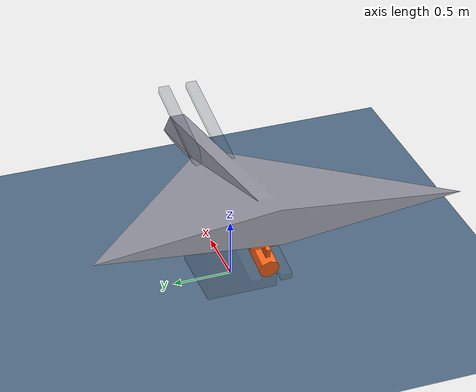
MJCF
<mujoco model="uav_rail_scene">

  <!-- ==============================================
       Compiler & Options
       ============================================== -->
  <compiler angle="degree" eulerseq="xyz"
             meshdir="/home/heinz/isaaclab_uav/assets"/>

  <option timestep="0.005" gravity="0 0 -9.81"
          impratio="20" tolerance="1e-8" ls_tolerance="1e-8"
          noslip_tolerance="1e-8">
    <flag contact="enable"/>
  </option>

  <!-- Soft contacts — damped collisions between rigid bodies.
       Cart stays non-collidable (contype=0 on its geoms) since the
       prismatic joint already handles its motion along the rail.    -->
  <contact>
    <pair name="uav_ground" geom1="ground" geom2="uav_body"
          solref="0.01 0.9" solimp="0.95 0.99 0.001 0.5 2"
          condim="3" friction="0.5 0.3 0.1"/>
    <pair name="uav_cart" geom1="cart_geom" geom2="uav_body"
          solref="0.01 0.9" solimp="0.95 0.99 0.001 0.5 2"
          condim="3" friction="0 0 0"/>
  </contact>

  <visual>
    <map stiffness="1000" fogstart="10" fogend="80"/>
    <quality shadowsize="2048"/>
    <headlight diffuse="0.6 0.6 0.6" ambient="0.3 0.3 0.3"/>
  </visual>

  <!-- ==============================================
       Assets: Meshes
       ============================================== -->
  <asset>
    <!-- UAV collision/visual mesh -->
    <mesh name="uav_mesh"
          file="shahed-136/source/shahed_collision_2.stl"/>
    <!-- Rail structure mesh -->
    <mesh name="rail_mesh"
          file="shahed-136/source/rail_collision.stl"/>
    <!-- Launch cart mesh -->
    <mesh name="cart_mesh"
          file="shahed-136/source/launch_cart.stl"/>
  </asset>

  <!-- ==============================================
       World Body
       ============================================== -->
  <worldbody>

    <!-- Ground plane (infinite flat plane at z=0) -->
    <geom name="ground" type="plane" size="50 50 0.1" pos="0 0 0"
          rgba="0.3 0.4 0.5 1"/>

    <!-- Lighting -->
    <light directional="true" diffuse="0.8 0.8 0.8" specular="0.2 0.2 0.2"
           pos="5 5 10" dir="-0.5 -0.5 -1"/>

    <body name="base_link" pos="0 0 0" quat="1 0 0 0">
      <geom name="base_geom" type="mesh" mesh="rail_mesh"
            rgba="0.25 0.30 0.35 0.25"
            density="0"
            contype="0" conaffinity="0"/>

      <!-- Tilted intermediate body — provides the inclined joint frame.
           euler="0 -78.5 0" → local +X ≈ (0.20, 0, 0.98) in world (upward) -->
      <body name="rail_link" pos="-0.65 0 0.71" euler="0 -11.5 0">

        <!-- Launch cart — slides along rail_link's local +X                 -->
        <body name="launch_cart" pos="0 0 0" euler="0 0 0">
          <joint name="rail_joint" type="slide" axis="1 0 0"
                 limited="true" range="0 2"
                 damping="5" stiffness="10"
                 armature="0.01"/>
          <inertial pos="0 0 0" mass="5" diaginertia="0.05 0.05 0.02"/>

          <!-- Cart — collides with UAV + rail. Joint constraint keeps it
               on track; soft contacts prevent jamming.                       -->
          <geom name="cart_geom" type="mesh" mesh="cart_mesh"
                rgba="1.0 0.4 0.1 1"
                density="0"/>

        </body>
      </body>
    </body>

    <body name="uav" pos="-0.2 0 1.00" euler="0 12.8 0">
      <!-- 6-DoF free joint -->
      <joint name="uav_joint" type="free"/>

      <!-- Inertial: mass=200 kg, inertia from URDF -->
      <inertial pos="0 0 0" mass="200" diaginertia="40 40 20"/>

      <!-- UAV — full collision with everything (default contype/affinity).  -->
      <geom name="uav_body" type="mesh" mesh="uav_mesh"
            rgba="0.6 0.6 0.65 1"
            density="0"/>

    </body>

  </worldbody>

  <!-- ==============================================
       Equality: launch cradle
       ============================================== -->
  <equality>
    <weld name="uav_cradle" body1="launch_cart" body2="uav"/>
  </equality>

  <!-- ==============================================
       Actuators
       ============================================== -->
  <actuator>
    <motor name="rail_motor" joint="rail_joint" gear="1"
           ctrlrange="-20000 20000"/>
  </actuator>

  <!-- ==============================================
       Sensors
       ============================================== -->
  <sensor>
    <!-- UAV body velocity -->
    <framelinvel name="uav_vel" objtype="body" objname="uav"/>
    <!-- Rail joint position & velocity -->
    <jointpos name="rail_pos" joint="rail_joint"/>
    <jointvel name="rail_vel" joint="rail_joint"/>
  </sensor>

</mujoco>
